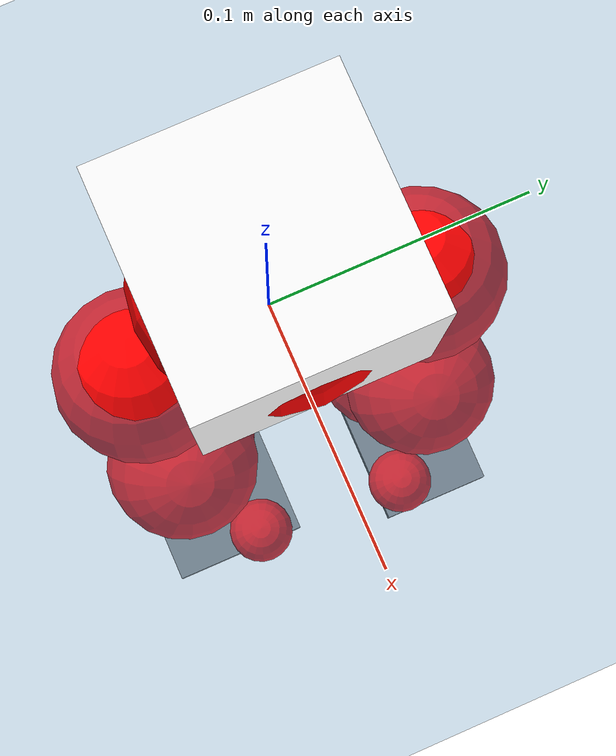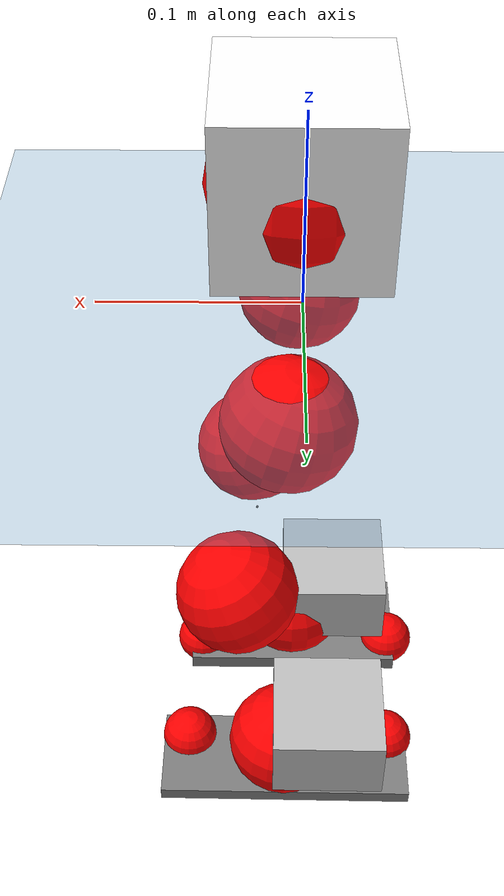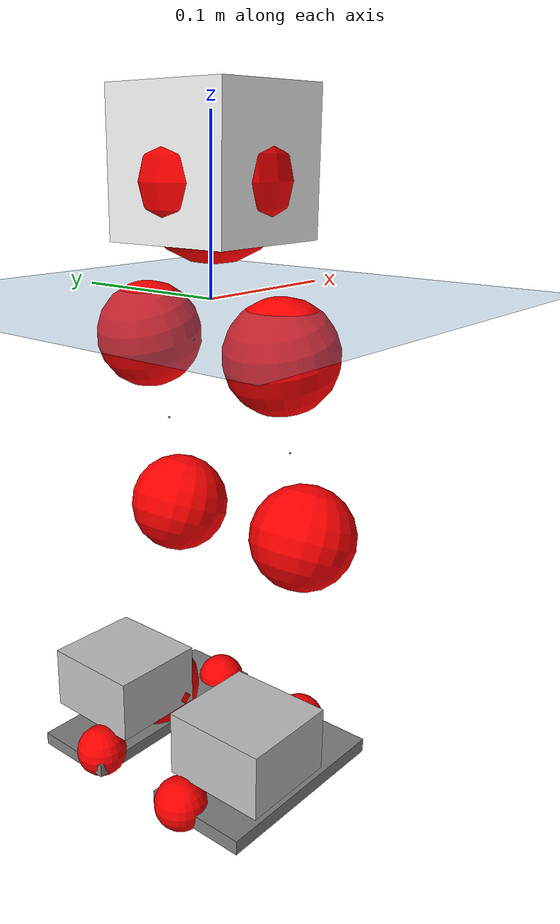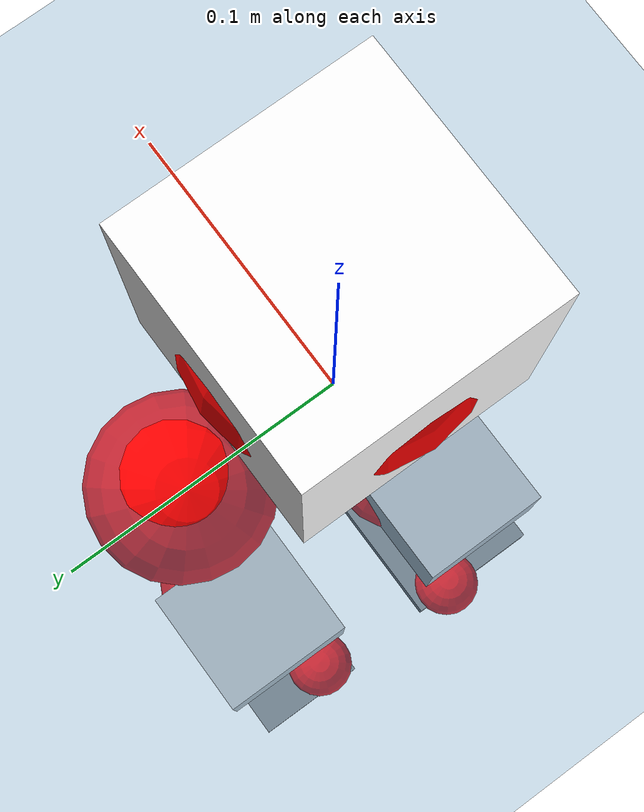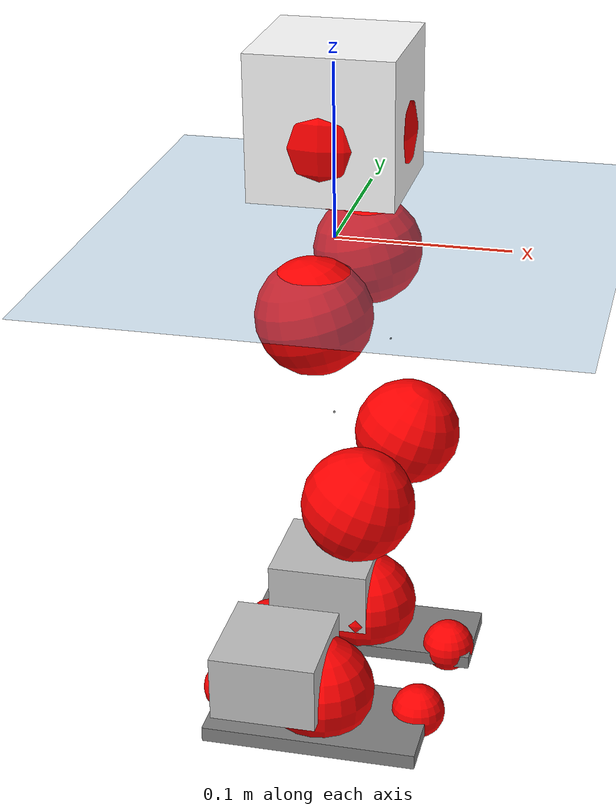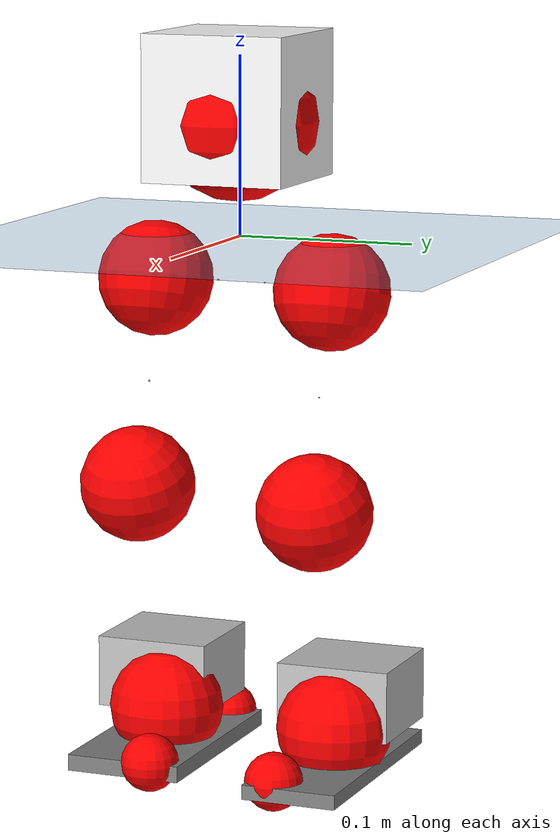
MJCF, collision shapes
<mujoco model="pi_12dof_release_v1">
  <compiler angle="radian" assetdir="assets" balanceinertia="true" inertiafromgeom="false"/>

  <option timestep="0.005" density="1.2" viscosity="2e-05"/>

  <size nkey="1"/>

  <visual>
    <quality shadowsize="8192"/>
    <map shadowclip="0.5"/>
  </visual>

  <default>
    <default class="/">
      <joint armature="0.01" damping="0.01" frictionloss="0.01"/>
      <geom contype="0" conaffinity="0" group="1" solref="-1000 -80"/>
      <site size="0.01 0.005 0.005" group="5"/>
      <general forcelimited="true" biastype="affine" gainprm="20" biasprm="0 -20 -0.5"/>
      <default class="foot">
        <geom size="0.0845 0.036 0.005" type="box" condim="6" group="4" priority="1" friction="0.9 0.2 0.2" solimp="0.015 1 0.005"/>
      </default>
      <default class="reward_collision_sphere">
        <geom group="5" rgba="1 0 0 1"/>
      </default>
    </default>
  </default>

  <asset>
    <texture type="skybox" colorspace="auto" name="//unnamed_texture_0" builtin="gradient" rgb1="0.95 0.95 0.95" rgb2="0.95 0.95 0.95" width="100" height="600"/>
    <texture type="2d" colorspace="auto" name="texplane" builtin="checker" rgb1="0.345 0.575 0.748" rgb2="0.345 0.575 0.748" markrgb="1 1 1" width="512" height="512"/>
    <material name="MatPlane" class="/" texture="texplane" texuniform="true" texrepeat="2 2" specular="0.9"/>
    <mesh name="baselink_1" class="/" file="baselink_1.STL"/>
    <mesh name="r_hip_pitch_link" class="/" file="r_hip_pitch_link.STL"/>
    <mesh name="r_hip_roll_link" class="/" file="r_hip_roll_link.STL"/>
    <mesh name="r_thigh_link" class="/" file="r_thigh_link.STL"/>
    <mesh name="r_calf_link" class="/" file="r_calf_link.STL"/>
    <mesh name="r_ankle_pitch_link" class="/" file="r_ankle_pitch_link.STL"/>
    <mesh name="r_ankle_roll_link" class="/" file="r_ankle_roll_link.STL"/>
    <mesh name="l_hip_pitch_link" class="/" file="l_hip_pitch_link.STL"/>
    <mesh name="l_hip_roll_link" class="/" file="l_hip_roll_link.STL"/>
    <mesh name="l_thigh_link" class="/" file="l_thigh_link.STL"/>
    <mesh name="l_calf_link" class="/" file="l_calf_link.STL"/>
    <mesh name="l_ankle_pitch_link" class="/" file="l_ankle_pitch_link.STL"/>
    <mesh name="l_ankle_roll_link" class="/" file="l_ankle_roll_link.STL"/>
  </asset>

  <worldbody>
    <geom name="floor" class="/" size="100 100 0.125" type="plane" group="0" material="MatPlane"/>
    <light name="toplight_shadow" class="/" pos="0 0 5" dir="0.0990148 0.0990148 -0.990148" type="directional" ambient="0.04 0.04 0.04" diffuse="0.55 0.55 0.55" specular="0.12 0.12 0.12"/>
    <light name="toplight_fill" class="/" pos="0 0 5" dir="0.0990148 0.0990148 -0.990148" type="directional" castshadow="false" ambient="0.04 0.04 0.04" diffuse="0.3 0.3 0.3" specular="0.08 0.08 0.08"/>
    <body name="trunk" pos="0.00183565 -0.000859615 0.00385788" quat="0.999999 -0.000815678 -0.00122305 -0.000143948">
      <inertial pos="0.00546048 -0.00194153 0.0351101" quat="0.689079 0.0196683 0.00917977 0.724361" mass="1.1013" diaginertia="0.00475717 0.00137962 0.00185521"/>
      <joint name="//unnamed_joint_0" type="free"/>
      <geom name="//unnamed_geom_1" class="/" type="mesh" density="0" rgba="1 1 1 1" mesh="baselink_1"/>
      <geom name="//unnamed_geom_2" class="/" size="0.0406516 0.0406516 0.0406516" pos="0 0 0.0688158" type="box" rgba="1 1 1 1"/>
      <geom name="//unnamed_geom_3" class="reward_collision_sphere" size="0.0447168" pos="0 0 0.0602138"/>
      <site name="imu" class="/" pos="0.0120564 0.00471291 0.0045787" size="0.00813032"/>
      <camera name="track" class="/" pos="0 -1.39875 0" quat="0.707107 0.707107 0 0" mode="trackcom"/>
      <camera name="ego_camera" class="/" pos="0.0659643 0 0.154835" quat="-0.5 -0.5 0.5 0.5"/>
      <body name="r_hip_pitch_link" pos="-0.00361513 -0.0129011 -0.0294253" quat="0.992185 -0.000113364 -0.124778 0.0001611">
        <inertial pos="0.00330798 -0.0405361 0.0033894" quat="-0.0160959 0.714763 -0.0152201 0.699015" mass="0.195674" diaginertia="5.60735e-05 1.56715e-05 3.85447e-05"/>
        <joint name="r_hip_pitch_joint" class="/" pos="0 0 0" axis="0.000168052 -0.999985 -0.00551602" range="-1.68923 1.19486" armature="0.00768938" damping="0.0164215" frictionloss="0.00903058"/>
        <geom name="//unnamed_geom_4" class="/" type="mesh" density="0" rgba="0.75294 0.75294 0.75294 1" mesh="r_hip_pitch_link"/>
        <geom name="//unnamed_geom_5" class="/" size="0.000406516 0.000406516 0.000406516" type="box" rgba="0.75294 0.75294 0.75294 1"/>
        <body name="r_hip_roll_link" pos="0.00193987 -0.0369052 -0.00100682" quat="1 -0.000224657 -0.000127367 0.000148921">
          <inertial pos="0.000728398 -0.000353796 -0.057734" quat="0.711367 -0.0710784 -0.0884238 0.693604" mass="0.220845" diaginertia="0.000185858 4.76309e-05 6.29473e-05"/>
          <joint name="r_hip_roll_joint" class="/" pos="0 0 0" axis="-0.999998 -0.00194943 0.000198968" range="-0.128407 0.517916" armature="0.00989799" damping="0.00185574" frictionloss="0.00843511"/>
          <geom name="//unnamed_geom_6" class="/" type="mesh" density="0" rgba="0.75294 0.75294 0.75294 1" mesh="r_hip_roll_link"/>
          <geom name="//unnamed_geom_7" class="/" size="0.000406516 0.000406516 0.000406516" type="box" rgba="0.75294 0.75294 0.75294 1"/>
          <geom name="//unnamed_geom_8" class="reward_collision_sphere" size="0.0325213"/>
          <body name="r_thigh_link" pos="-0.00384997 0.000215284 -0.0577836" quat="1 -2.89757e-05 -0.000750118 0.000237011">
            <inertial pos="0.00527947 0.00416816 -0.0404487" quat="0.737097 0.675785 -0.000907697 0.00149982" mass="0.0599036" diaginertia="6.79791e-05 1.61132e-05 2.75628e-05"/>
            <joint name="r_thigh_joint" class="/" pos="0 0 0" axis="-0.000691425 -0.00423896 -0.999991" range="-0.334146 0.557184" armature="0.00968933" damping="0.00202449" frictionloss="0.00720885"/>
            <geom name="//unnamed_geom_9" class="/" type="mesh" density="0" rgba="0.75294 0.75294 0.75294 1" mesh="r_thigh_link"/>
            <geom name="//unnamed_geom_10" class="/" size="0.000406516 0.000406516 0.000406516" type="box" rgba="0.75294 0.75294 0.75294 1"/>
            <body name="r_calf_link" pos="-0.000914535 -0.00125799 -0.0579449" quat="0.946985 -0.00023996 0.321277 0.000345047">
              <inertial pos="-0.00295842 -0.0005808 -0.06158" quat="0.999771 0.00860625 -0.0133993 0.0142804" mass="0.402005" diaginertia="0.00184667 0.000570134 8.15969e-05"/>
              <joint name="r_calf_joint" class="/" pos="0 0 0" axis="0.000738643 -0.999863 0.0165171" range="-1.63607 0.674784" armature="0.00818629" damping="0.00260615" frictionloss="0.00863711"/>
              <geom name="//unnamed_geom_11" class="/" type="mesh" density="0" rgba="0.75294 0.75294 0.75294 1" mesh="r_calf_link"/>
              <geom name="//unnamed_geom_12" class="/" size="0.000406516 0.000406516 0.000406516" type="box" rgba="0.75294 0.75294 0.75294 1"/>
              <geom name="//unnamed_geom_13" class="reward_collision_sphere" size="0.0325213"/>
              <body name="r_ankle_pitch_link" pos="-0.00150459 -0.000177871 -0.126375" quat="0.979982 -0.000674856 -0.199082 -0.0006437">
                <inertial pos="0.00225447 0.00167714 -0.00290366" quat="0.0114951 0.709898 -0.0101824 0.704137" mass="0.0934839" diaginertia="0.000161886 3.76301e-05 5.77182e-05"/>
                <joint name="r_ankle_pitch_joint" class="/" pos="0 0 0" axis="-0.000259061 -0.999997 0.00230106" stiffness="0.00621385" range="-1.32359 0.493803" armature="0.00715431" damping="0" frictionloss="0.00901407"/>
                <geom name="//unnamed_geom_14" class="/" type="mesh" density="0" rgba="0.75294 0.75294 0.75294 1" mesh="r_ankle_pitch_link"/>
                <geom name="//unnamed_geom_15" class="/" size="0.0317082 0.0325213 0.0203258" type="box" rgba="0.75294 0.75294 0.75294 1"/>
                <body name="r_ankle_roll_link" pos="0.0699779 0.00712032 -0.000590052" quat="0.999999 -0.000351724 0.000128415 -0.00124508">
                  <inertial pos="-0.0246566 0.00282202 -0.0138218" quat="0.573503 0.413229 0.437137 0.5561" mass="0.280501" diaginertia="0.000610676 0.000173823 0.000137116"/>
                  <joint name="r_ankle_roll_joint" class="/" pos="0 0 0" axis="-0.999994 0.00139759 0.00320962" stiffness="0.00519788" range="-0.0574744 0.170851" armature="0.00891435" damping="0" frictionloss="0.00937465"/>
                  <geom name="//unnamed_geom_16" class="/" type="mesh" density="0" rgba="0.75294 0.75294 0.75294 1" mesh="r_ankle_roll_link"/>
                  <geom name="//unnamed_geom_17" class="/" type="mesh" rgba="0.75294 0.75294 0.75294 1" mesh="r_ankle_roll_link"/>
                  <geom name="right_foot" class="foot" size="0.0647115 0.033016 0.00459662" pos="-0.0448557 0 -0.0378487"/>
                  <geom name="//unnamed_geom_19" class="reward_collision_sphere" size="0.0325213" pos="-0.0439762 0 -0.0172039"/>
                  <geom name="//unnamed_geom_20" class="reward_collision_sphere" size="0.0162606" pos="0.0131929 0.0139875 -0.0344079"/>
                  <geom name="//unnamed_geom_21" class="reward_collision_sphere" size="0.0162606" pos="-0.105543 0.0139875 -0.0344079"/>
                  <site name="right_foot" class="foot" pos="-0.0448557 0 -0.0378487" size="0.00813032"/>
                </body>
              </body>
            </body>
          </body>
        </body>
      </body>
      <body name="l_hip_pitch_link" pos="0.000419296 0.0162818 -0.0289182" quat="0.992155 0.000309358 -0.12501 -0.000995965">
        <inertial pos="-0.00204185 0.0404517 0.00385311" quat="-0.0388492 0.711752 0.0360835 0.700427" mass="0.202737" diaginertia="6.53232e-05 1.78427e-05 4.73214e-05"/>
        <joint name="l_hip_pitch_joint" class="/" pos="0 0 0" axis="-0.00903176 0.999958 -0.00135663" range="-1.17232 1.72479" armature="0.00814238" damping="0.00737692" frictionloss="0.00868386"/>
        <geom name="//unnamed_geom_22" class="/" type="mesh" density="0" rgba="0.75294 0.75294 0.75294 1" mesh="l_hip_pitch_link"/>
        <geom name="//unnamed_geom_23" class="/" size="0.000406516 0.000406516 0.000406516" type="box" rgba="0.75294 0.75294 0.75294 1"/>
        <body name="l_hip_roll_link" pos="0.00372015 0.0412804 -0.00363257" quat="1 -0.000111398 -0.00030361 -4.65088e-05">
          <inertial pos="-0.00598307 0.000488296 -0.0480905" quat="0.699198 -0.0751185 -0.078024 0.706677" mass="0.194818" diaginertia="0.000158304 4.46638e-05 5.67703e-05"/>
          <joint name="l_hip_roll_joint" class="/" pos="0 0 0" axis="-0.999983 -0.00487318 0.00315503" range="-0.505333 0.0937074" armature="0.00824247" damping="0.00591482" frictionloss="0.00813056"/>
          <geom name="//unnamed_geom_24" class="/" type="mesh" density="0" rgba="0.75294 0.75294 0.75294 1" mesh="l_hip_roll_link"/>
          <geom name="//unnamed_geom_25" class="/" size="0.000406516 0.000406516 0.000406516" type="box" rgba="0.75294 0.75294 0.75294 1"/>
          <geom name="//unnamed_geom_26" class="reward_collision_sphere" size="0.0325213"/>
          <body name="l_thigh_link" pos="-5.56897e-05 -0.00195592 -0.0580409" quat="1 0.000277911 -0.000257622 -0.000330007">
            <inertial pos="0.00383165 -0.000986664 -0.0370031" quat="0.684145 0.729332 -0.00352093 0.0028764" mass="0.0610578" diaginertia="6.57768e-05 1.55885e-05 2.80394e-05"/>
            <joint name="l_thigh_joint" class="/" pos="0 0 0" axis="-0.00183179 0.00352203 -0.999992" range="-0.6049 0.246718" armature="0.00720693" damping="0" frictionloss="0.00641587"/>
            <geom name="//unnamed_geom_27" class="/" type="mesh" density="0" rgba="0.75294 0.75294 0.75294 1" mesh="l_thigh_link"/>
            <geom name="//unnamed_geom_28" class="/" size="0.000406516 0.000406516 0.000406516" type="box" rgba="0.75294 0.75294 0.75294 1"/>
            <body name="l_calf_link" pos="-0.0054239 0.00157939 -0.0629279" quat="0.947471 -9.1449e-05 0.319842 -5.79396e-05">
              <inertial pos="0.001316 0.00137656 -0.0604583" quat="0.999875 0.0116516 0.0103272 0.00289398" mass="0.442092" diaginertia="0.00169268 0.000554446 7.95431e-05"/>
              <joint name="l_calf_joint" class="/" pos="0 0 0" axis="0.00203648 0.999967 -0.00780373" stiffness="0.00518466" range="-0.60977 1.5958" armature="0.00907244" damping="0.000907804" frictionloss="0.00829865"/>
              <geom name="//unnamed_geom_29" class="/" type="mesh" density="0" rgba="0.75294 0.75294 0.75294 1" mesh="l_calf_link"/>
              <geom name="//unnamed_geom_30" class="/" size="0.000406516 0.000406516 0.000406516" type="box" rgba="0.75294 0.75294 0.75294 1"/>
              <geom name="//unnamed_geom_31" class="reward_collision_sphere" size="0.0325213"/>
              <body name="l_ankle_pitch_link" pos="-0.00389695 0.00314964 -0.123934" quat="0.979982 0.000429007 -0.199083 -0.00106666">
                <inertial pos="0.00645923 -0.00211165 0.00230877" quat="-0.00128304 0.706956 0.0032096 0.707249" mass="0.0965805" diaginertia="0.000153122 3.63005e-05 5.63882e-05"/>
                <joint name="l_ankle_pitch_joint" class="/" pos="0 0 0" axis="-0.00307662 0.999995 -0.000967439" range="-0.514658 1.32568" armature="0.00725246" damping="0.0293273" frictionloss="0.00854672"/>
                <geom name="//unnamed_geom_32" class="/" type="mesh" density="0" rgba="0.75294 0.75294 0.75294 1" mesh="l_ankle_pitch_link"/>
                <geom name="//unnamed_geom_33" class="/" size="0.0317082 0.0325213 0.0203258" type="box" rgba="0.75294 0.75294 0.75294 1"/>
                <body name="l_ankle_roll_link" pos="0.0689877 -0.000670404 0.00149865" quat="0.999997 -0.00180958 -0.00171516 0.000130183">
                  <inertial pos="-0.0205623 -0.000207233 -0.012368" quat="0.55244 0.441444 0.436234 0.55645" mass="0.272853" diaginertia="0.000584601 0.000177167 0.000139736"/>
                  <joint name="l_ankle_roll_joint" class="/" pos="0 0 0" axis="-1 -1.93523e-06 -4.52345e-05" range="-0.11895 0.248369" armature="0.00855582" damping="0.004701" frictionloss="0.00746904"/>
                  <geom name="//unnamed_geom_34" class="/" type="mesh" density="0" rgba="0.75294 0.75294 0.75294 1" mesh="l_ankle_roll_link"/>
                  <geom name="//unnamed_geom_35" class="/" type="mesh" rgba="0.75294 0.75294 0.75294 1" mesh="l_ankle_roll_link"/>
                  <geom name="left_foot" class="foot" size="0.0732633 0.02693 0.00407114" pos="-0.0448557 0 -0.0378487"/>
                  <geom name="//unnamed_geom_37" class="reward_collision_sphere" size="0.0325213" pos="-0.0439762 0 -0.0172039"/>
                  <geom name="//unnamed_geom_38" class="reward_collision_sphere" size="0.0162606" pos="0.0131929 -0.0139875 -0.0344079"/>
                  <geom name="//unnamed_geom_39" class="reward_collision_sphere" size="0.0162606" pos="-0.105543 -0.0139875 -0.0344079"/>
                  <site name="left_foot" class="foot" pos="-0.0448557 0 -0.0378487" size="0.00813032"/>
                </body>
              </body>
            </body>
          </body>
        </body>
      </body>
    </body>
  </worldbody>

  <contact>
    <pair class="/" geom1="floor" geom2="right_foot" name="//unnamed_contact_1"/>
    <pair class="/" geom1="floor" geom2="left_foot" name="//unnamed_contact_0"/>
  </contact>

  <actuator>
    <general name="r_hip_pitch_joint" class="/" joint="r_hip_pitch_joint" forcerange="-15.8492 15.8492" gainprm="18.2394" biasprm="0 -18.2394 -0.435629"/>
    <general name="r_hip_roll_joint" class="/" joint="r_hip_roll_joint" forcerange="-19.9154 19.9154" gainprm="18.2394" biasprm="0 -18.2394 -0.435629"/>
    <general name="r_thigh_joint" class="/" joint="r_thigh_joint" forcerange="-17.6533 17.6533" gainprm="18.2394" biasprm="0 -18.2394 -0.435629"/>
    <general name="r_calf_joint" class="/" joint="r_calf_joint" forcerange="-13.9623 13.9623" gainprm="18.2394" biasprm="0 -18.2394 -0.435629"/>
    <general name="r_ankle_pitch_joint" class="/" joint="r_ankle_pitch_joint" forcerange="-15.7803 15.7803" gainprm="18.2394" biasprm="0 -18.2394 -0.435629"/>
    <general name="r_ankle_roll_joint" class="/" joint="r_ankle_roll_joint" forcerange="-19.8146 19.8146" gainprm="18.2394" biasprm="0 -18.2394 -0.435629"/>
    <general name="l_hip_pitch_joint" class="/" joint="l_hip_pitch_joint" forcerange="-17.5721 17.5721" gainprm="18.2394" biasprm="0 -18.2394 -0.435629"/>
    <general name="l_hip_roll_joint" class="/" joint="l_hip_roll_joint" forcerange="-18.5875 18.5875" gainprm="18.2394" biasprm="0 -18.2394 -0.435629"/>
    <general name="l_thigh_joint" class="/" joint="l_thigh_joint" forcerange="-17.7503 17.7503" gainprm="18.2394" biasprm="0 -18.2394 -0.435629"/>
    <general name="l_calf_joint" class="/" joint="l_calf_joint" forcerange="-15.6756 15.6756" gainprm="18.2394" biasprm="0 -18.2394 -0.435629"/>
    <general name="l_ankle_pitch_joint" class="/" joint="l_ankle_pitch_joint" forcerange="-17.8486 17.8486" gainprm="18.2394" biasprm="0 -18.2394 -0.435629"/>
    <general name="l_ankle_roll_joint" class="/" joint="l_ankle_roll_joint" forcerange="-17.5736 17.5736" gainprm="18.2394" biasprm="0 -18.2394 -0.435629"/>
  </actuator>

  <sensor>
    <gyro site="imu" name="imu_angular_velocity"/>
    <velocimeter site="imu" name="imu_linear_velocity"/>
    <framelinvel objtype="site" objname="left_foot" name="left_foot_global_linear_velocity"/>
    <framelinvel objtype="site" objname="right_foot" name="right_foot_global_linear_velocity"/>
  </sensor>

  <keyframe>
    <key name="home" qpos="0 0 0.291 1 0 0 0 0.4 0 0 -0.8 0.4 0 -0.4 0 0 0.8 -0.4 0"/>
  </keyframe>
</mujoco>
